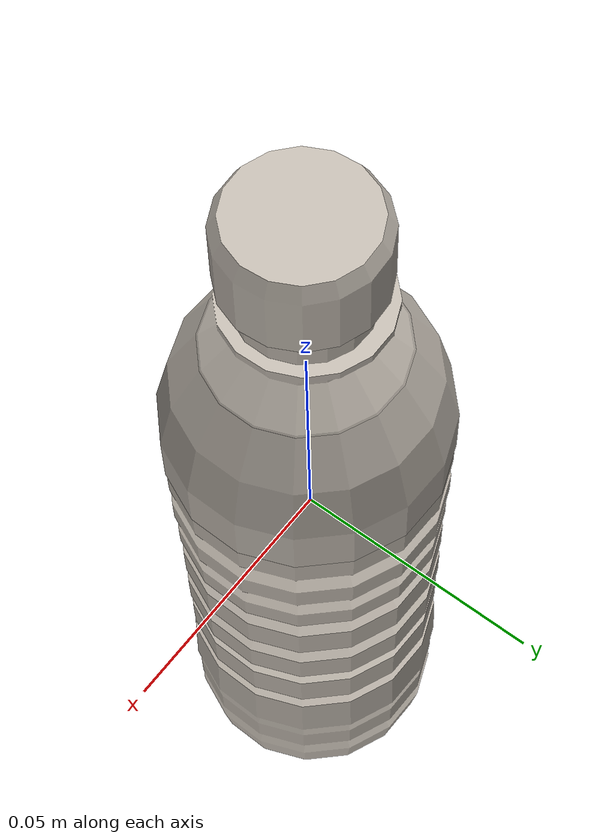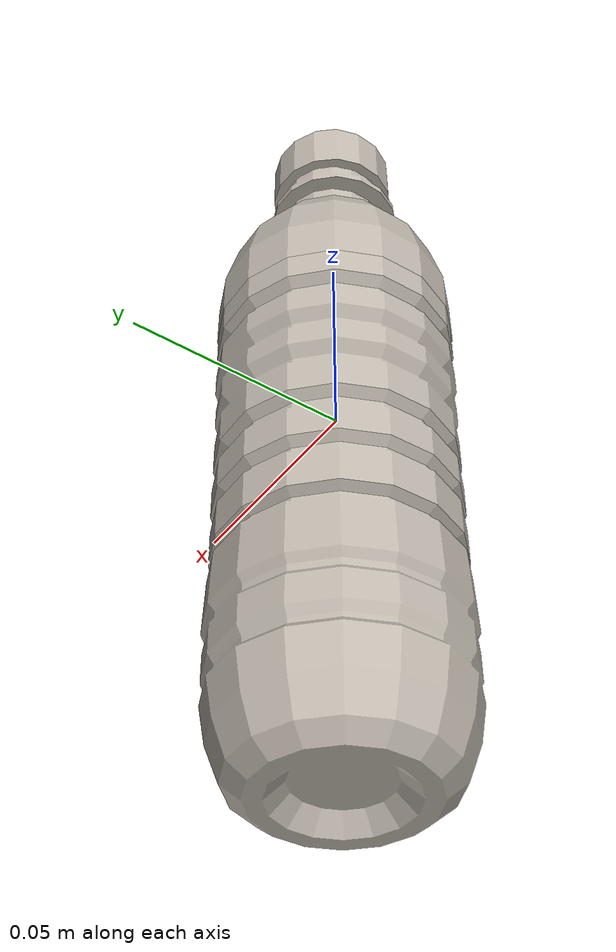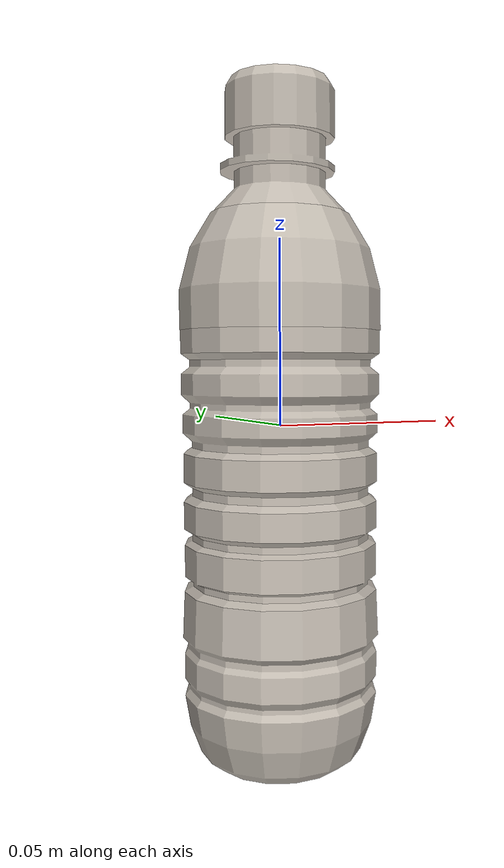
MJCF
<?xml version='1.0' encoding='utf-8'?>
<mujoco model="bottled_water_12">
  <asset>
    <mesh file="visual/model_normalized_0.obj" name="model_normalized_0_vis" scale="0.181818 0.181818 0.181818" refquat="1.0 0.0 0.0 0.0" />
    <mesh file="visual/model_normalized_1.obj" name="model_normalized_1_vis" scale="0.181818 0.181818 0.181818" refquat="1.0 0.0 0.0 0.0" />
    <mesh file="visual/model_normalized_2.obj" name="model_normalized_2_vis" scale="0.181818 0.181818 0.181818" refquat="1.0 0.0 0.0 0.0" />
    <mesh file="visual/model_normalized_3.obj" name="model_normalized_3_vis" scale="0.181818 0.181818 0.181818" refquat="1.0 0.0 0.0 0.0" />
    <texture type="2d" name="image0" file="visual/image0.png" />
    <material name="Material_141" texture="image0" specular="0.5" shininess="0.359999993" />
    <material name="lable" texture="image0" specular="0.5" shininess="0.359999993" />
    <material name="material.007" texture="image0" specular="0.5" shininess="0.359999993" />
    <material name="water.001" texture="image0" specular="0.5" shininess="0.359999993" />
    <mesh file="collision/collision_mesh_collision_0.obj" name="bottled_collision_mesh_0" scale="0.181818 0.181818 0.181818" refquat="1.0 0.0 0.0 0.0" />
    <mesh file="collision/collision_mesh_collision_1.obj" name="bottled_collision_mesh_1" scale="0.181818 0.181818 0.181818" refquat="1.0 0.0 0.0 0.0" />
    <mesh file="collision/collision_mesh_collision_2.obj" name="bottled_collision_mesh_2" scale="0.181818 0.181818 0.181818" refquat="1.0 0.0 0.0 0.0" />
    <mesh file="collision/collision_mesh_collision_3.obj" name="bottled_collision_mesh_3" scale="0.181818 0.181818 0.181818" refquat="1.0 0.0 0.0 0.0" />
    <mesh file="collision/collision_mesh_collision_4.obj" name="bottled_collision_mesh_4" scale="0.181818 0.181818 0.181818" refquat="1.0 0.0 0.0 0.0" />
    <mesh file="collision/collision_mesh_collision_5.obj" name="bottled_collision_mesh_5" scale="0.181818 0.181818 0.181818" refquat="1.0 0.0 0.0 0.0" />
    <mesh file="collision/collision_mesh_collision_6.obj" name="bottled_collision_mesh_6" scale="0.181818 0.181818 0.181818" refquat="1.0 0.0 0.0 0.0" />
    <mesh file="collision/collision_mesh_collision_7.obj" name="bottled_collision_mesh_7" scale="0.181818 0.181818 0.181818" refquat="1.0 0.0 0.0 0.0" />
    <mesh file="collision/collision_mesh_collision_8.obj" name="bottled_collision_mesh_8" scale="0.181818 0.181818 0.181818" refquat="1.0 0.0 0.0 0.0" />
    <mesh file="collision/collision_mesh_collision_9.obj" name="bottled_collision_mesh_9" scale="0.181818 0.181818 0.181818" refquat="1.0 0.0 0.0 0.0" />
    <mesh file="collision/collision_mesh_collision_10.obj" name="bottled_collision_mesh_10" scale="0.181818 0.181818 0.181818" refquat="1.0 0.0 0.0 0.0" />
    </asset>
  <default>
    <default class="region">
      <geom group="1" conaffinity="0" contype="0" rgba="0 1 0 0" />
      </default>
    <default class="collision">
      <geom group="3" rgba="0.5 0 0 0.5" density="1000.0" />
      </default>
    </default>
  <worldbody>
    <body>
      <body name="object">
        <geom density="100" friction="0.95 0.3 0.1" type="mesh" mesh="model_normalized_0_vis" conaffinity="0" contype="0" group="1" material="lable" />
        <geom density="100" friction="0.95 0.3 0.1" type="mesh" mesh="model_normalized_1_vis" conaffinity="0" contype="0" group="1" material="water.001" />
        <geom density="100" friction="0.95 0.3 0.1" type="mesh" mesh="model_normalized_2_vis" conaffinity="0" contype="0" group="1" material="Material_141" />
        <geom density="100" friction="0.95 0.3 0.1" type="mesh" mesh="model_normalized_3_vis" conaffinity="0" contype="0" group="1" material="material.007" />
        <geom class="region" name="reg_bbox" type="box" pos="0.00021110924999999877 -0.00017307675000000007 -1.847100000000601e-05" size="0.021501847499999997 0.0210480465 0.0747151425" />
        <geom mesh="bottled_collision_mesh_0" type="mesh" class="collision"  solref="0.004 1" solimp="0.998 0.998 0.001"/>
        <geom mesh="bottled_collision_mesh_1" type="mesh" class="collision"  solref="0.004 1" solimp="0.998 0.998 0.001"/>
        <geom mesh="bottled_collision_mesh_2" type="mesh" class="collision"  solref="0.004 1" solimp="0.998 0.998 0.001"/>
        <geom mesh="bottled_collision_mesh_3" type="mesh" class="collision"  solref="0.004 1" solimp="0.998 0.998 0.001"/>
        <geom mesh="bottled_collision_mesh_4" type="mesh" class="collision"  solref="0.004 1" solimp="0.998 0.998 0.001"/>
        <geom mesh="bottled_collision_mesh_5" type="mesh" class="collision"  solref="0.004 1" solimp="0.998 0.998 0.001"/>
        <geom mesh="bottled_collision_mesh_6" type="mesh" class="collision"  solref="0.004 1" solimp="0.998 0.998 0.001"/>
        <geom mesh="bottled_collision_mesh_7" type="mesh" class="collision"  solref="0.004 1" solimp="0.998 0.998 0.001"/>
        <geom mesh="bottled_collision_mesh_8" type="mesh" class="collision"  solref="0.004 1" solimp="0.998 0.998 0.001"/>
        <geom mesh="bottled_collision_mesh_9" type="mesh" class="collision"  solref="0.004 1" solimp="0.998 0.998 0.001"/>
        <geom mesh="bottled_collision_mesh_10" type="mesh" class="collision"  solref="0.004 1" solimp="0.998 0.998 0.001"/>
        </body>
      </body>
    </worldbody>
  </mujoco>
